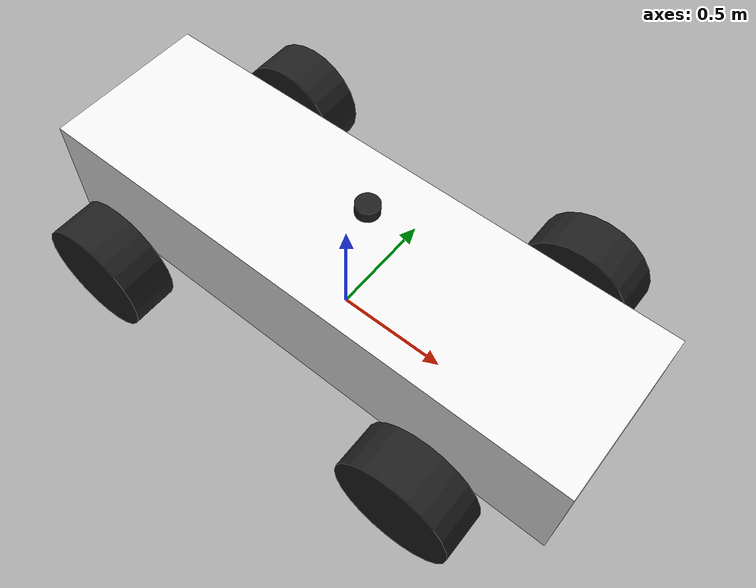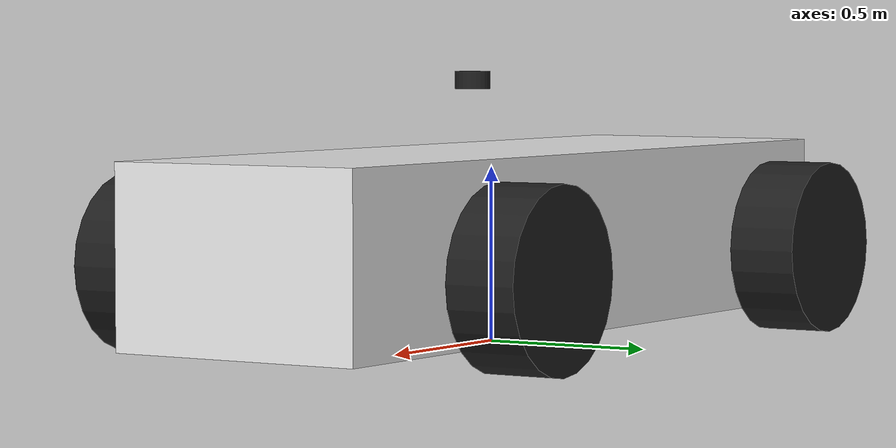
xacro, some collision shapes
<?xml version="1.0"?>
<robot xmlns:xacro="http://www.ros.org/wiki/xacro">

    <xacro:include filename="inertial_macros.xacro"/>
    <xacro:include filename="ackermann_macros.xacro"/>

    <!-- links and joints go here -->

    <!-- The rest of the robot can be described from base_link, which is the centre point of the four driving wheels -->
    <link name="base_link">
    </link>

    <!-- chassis joint goes here. It connects chassis to base_link via fixed joint -->
    <joint name="chassis_joint" type="fixed">
        <parent link="base_link"/>
        <child link="chassis"/>
        <origin xyz="0 0 0"/>
    </joint> launch-prefix="bash -c 'sleep 5; $0 $@'"
    <!-- chassis description goes here. Needs to be updated when accurate dimension of the car is known-->
    <link name="chassis">
        <visual>
            <origin xyz="0 0 0.3" rpy="0 0 0"/>
            <geometry>
                <mesh filename="package://gra_base/meshes/ads-dv.stl"/>
            </geometry>
            <material name="white"/>
        </visual>
        <!-- physics model -->
        <collision>
            <origin xyz="0 0 0.3" rpy="0 0 0"/>
            <geometry>
                <box size="2.5 0.75 0.5"/>
            </geometry>
        </collision>
        <xacro:inertial_box mass="300" x="2.5" y="0.75" z="0.5">
            <origin xyz="0 0 0.3" rpy="0 0 0"/>
        </xacro:inertial_box>
    </link>
    <joint name="laser_joint" type="fixed">
        <parent link="chassis"/>
        <child link="laser"/>
        <origin xyz="0.1 0 0.75" rpy="0 0 0"/>
    </joint>
    <link name="laser">
        <visual>
            <origin xyz="0 0 0" rpy="0 0 0"/>
            <geometry>
                <cylinder length="0.05" radius="0.05"/>
            </geometry>
            <material name="black"/>
        </visual>
    </link>
    <!-- gazebo specific description -->
    <gazebo reference="chassis">
        <material>Gazebo/White</material>
    </gazebo>

    <xacro:rear_wheel/>
    <xacro:front_wheel right_left="right" reflect_right_left="1"/>
    <xacro:front_wheel right_left="left" reflect_right_left="-1"/>
    <xacro:wheel right_left="right" reflect_right_left="1" front_rear="rear" reflect_front_rear="-1"/>
    <xacro:wheel right_left="left" reflect_right_left="-1" front_rear="rear" reflect_front_rear="-1"/>

    <!-- steer -->
    <link name="front_steer_link"/>
    <joint name="front_steer_joint" type="fixed">
        <axis xyz="0 1 0"/>
        <parent link="base_link"/>
        <child link="front_steer_link"/>
        <origin xyz="0.77 0 0.25"/>
    </joint>

    <transmission name="tran1">
      <type>transmission_interface/SimpleTransmission</type>
        <joint name="base_to_left_rear_wheel">
          <hardwareInterface>EffortJointInterface</hardwareInterface>
        </joint>
        <actuator name="motor1">
          <hardwareInterface>EffortJointInterface</hardwareInterface>
          <mechanicalReduction>1</mechanicalReduction>
        </actuator>
    </transmission>

    <transmission name="tran2">
      <type>transmission_interface/SimpleTransmission</type>
      <joint name="base_to_right_rear_wheel">
        <hardwareInterface>EffortJointInterface</hardwareInterface>
      </joint>
      <actuator name="motor2">
        <hardwareInterface>EffortJointInterface</hardwareInterface>
        <mechanicalReduction>1</mechanicalReduction>
      </actuator>
    </transmission>

</robot>

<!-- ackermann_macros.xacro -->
<robot xmlns:xacro="http://www.ros.org/wiki/xacro" >
    <!-- Constants for math -->
    <xacro:property name="PI" value="3.1415926535897931" />
    <!-- Constants for robot dimensions -->
    <xacro:property name="length_wheel" value="0.2" />
    <xacro:property name="radius_wheel" value="0.25" />
    <xacro:property name="base_center_x" value="0" />
    <xacro:property name="length_from_base_center_to_wheel_x" value="0.77" /> <!-- this is the distance between front wheel and rear wheel divided by 2 -->
    <xacro:property name="length_from_base_to_wheel_front_x" value="0.77" />
    <xacro:property name="length_from_base_to_wheel_rear_x" value="0.77" />
    <xacro:property name="length_from_base_to_wheel_y" value="0.6" />
    <xacro:macro name="default_inertial" params="mass">
        <inertial>
            <mass value="${mass}" />
            <inertia ixx="1.0" ixy="0.0" ixz="0.0"
                iyy="1.0" iyz="0.0"
                izz="1.0" />
        </inertial>
    </xacro:macro>

    <!-- wheel macro -->
    <xacro:macro name="rear_wheel">
        <link name="rear_wheel_link">
            <collision>
                <origin rpy="${PI/2} 0 0" xyz="0 0 0"/>
                <geometry>
                    <cylinder length="${length_wheel}" radius="${radius_wheel}"/>
                </geometry>
            </collision>
        </link>
        <joint name="rear_wheel_joint" type="continuous">
            <axis xyz="0 1 0"/>
            <parent link="base_link"/>
            <child link="rear_wheel_link"/>
            <origin xyz="${-base_center_x-length_from_base_center_to_wheel_x} 0 ${radius_wheel}"/>
        </joint>
    </xacro:macro>
    <gazebo>
        <plugin name="gazebo_ros_control" filename="libgazebo_ros_control.so">
        </plugin>
    </gazebo>
    <xacro:macro name="wheel" params="right_left reflect_right_left front_rear reflect_front_rear">
        <link name="${right_left}_${front_rear}_wheel">
            <visual>
                <!-- when reflect_right_left = 1 to be 0 reflect_right_left= -1 to be PI -->
                <origin rpy="${PI/2} 0 0" xyz="0 0 0"/>
                <geometry>
                    <cylinder length="${length_wheel}" radius="${radius_wheel}" />
                </geometry>
                <material name="black"/>
            </visual>
            <collision>
                <origin rpy="${PI/2} 0 0" xyz="0 0 0"/>
                <geometry>
                    <cylinder length="${length_wheel}" radius="${radius_wheel}"/>
                </geometry>
            </collision>
            <xacro:default_inertial mass="1"/>
        </link>
        <joint name="base_to_${right_left}_${front_rear}_wheel" type="continuous">
            <axis xyz="0 1 0"/>
            <parent link="base_link"/>
            <child link="${right_left}_${front_rear}_wheel"/>
            <origin xyz="${base_center_x+reflect_front_rear*length_from_base_center_to_wheel_x} ${-reflect_right_left*length_from_base_to_wheel_y} ${radius_wheel}"/>
        </joint>

        <transmission name="tran_${right_left}_${front_rear}">
            <type>transmission_interface/SimpleTransmission</type>
            <joint name="base_to_${right_left}_${front_rear}_wheel">
                <hardwareInterface>VelocityJointInterface</hardwareInterface>
            </joint>
            <actuator name="${right_left}_${front_rear}">
                <hardwareInterface>VelocityJointInterface</hardwareInterface>
                <mechanicalReduction>1</mechanicalReduction>
            </actuator>
        </transmission>
    </xacro:macro>

    <!-- front wheel macro -->
    <xacro:macro name="front_wheel" params="right_left reflect_right_left">
        <!-- steer_right -->
        <link name="steer_${right_left}">
            <inertial>
                <mass value="1.0" />
                <inertia ixx="1.0" ixy="0.0" ixz="0.0"
                    iyy="1.0" iyz="0.0"
                    izz="1.0" />
            </inertial>
        </link>

        <joint name="base_to_${right_left}_front_steer" type="revolute">
            <axis xyz="0 0 1"/>
            <parent link="base_link"/>
            <child link="steer_${right_left}"/>
            <origin xyz="${base_center_x+length_from_base_center_to_wheel_x} ${-reflect_right_left*length_from_base_to_wheel_y} ${radius_wheel}"/>
            <dynamics damping="0.7" friction="0.7"/>
            <limit effort="7.0" lower="${-80*PI/180}" upper="${80*PI/180}" velocity="${200.0*PI/180.0*0.95}"/>
        </joint>

        <link name="${right_left}_front_wheel">
            <visual>
                <!-- when reflect_right_left = 1 to be 0 reflect_right_left= -1 to be PI -->
                <origin rpy="${PI/2} 0 0" xyz="0 0 0"/>
                <geometry>
                    <cylinder length="${length_wheel}" radius="${radius_wheel}" />
                </geometry>
                <material name="black"/>
            </visual>
            <collision>
                <origin rpy="${PI/2} 0 0" xyz="0 0 0"/>
                <geometry>
                    <cylinder length="${length_wheel}" radius="${radius_wheel}"/>
                </geometry>
            </collision>
            <xacro:default_inertial mass="1"/>
        </link>
        <joint name="base_to_${right_left}_front_wheel" type="continuous">
            <axis xyz="0 1 0"/>
            <parent link="steer_${right_left}"/>
            <child link="${right_left}_front_wheel"/>
            <origin xyz="0 0 0"/>
        </joint>

        <transmission name="tran_${right_left}_front">
            <type>transmission_interface/SimpleTransmission</type>
            <joint name="base_to_${right_left}_front_wheel">
                <hardwareInterface>VelocityJointInterface</hardwareInterface>
            </joint>
            <actuator name="${right_left}_front">
                <hardwareInterface>VelocityJointInterface</hardwareInterface>
                <mechanicalReduction>1</mechanicalReduction>
            </actuator>
        </transmission>
    </xacro:macro>

</robot>
